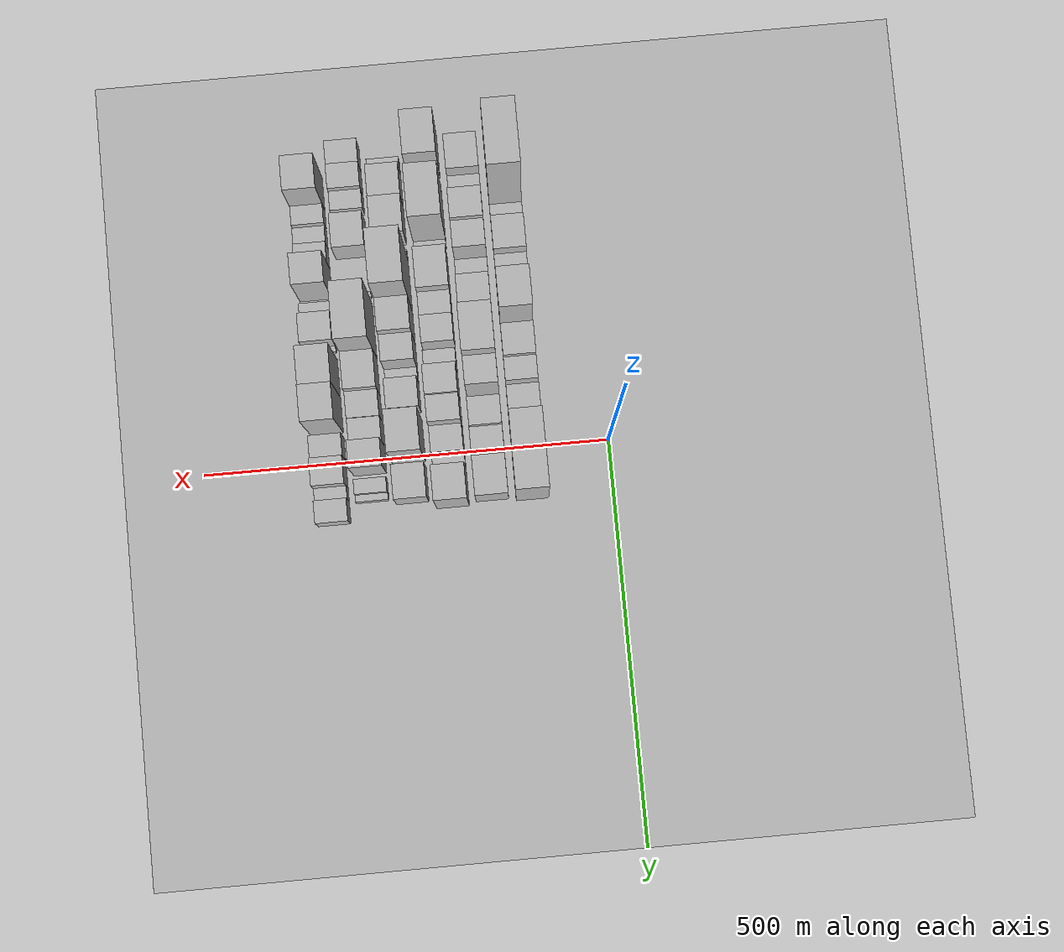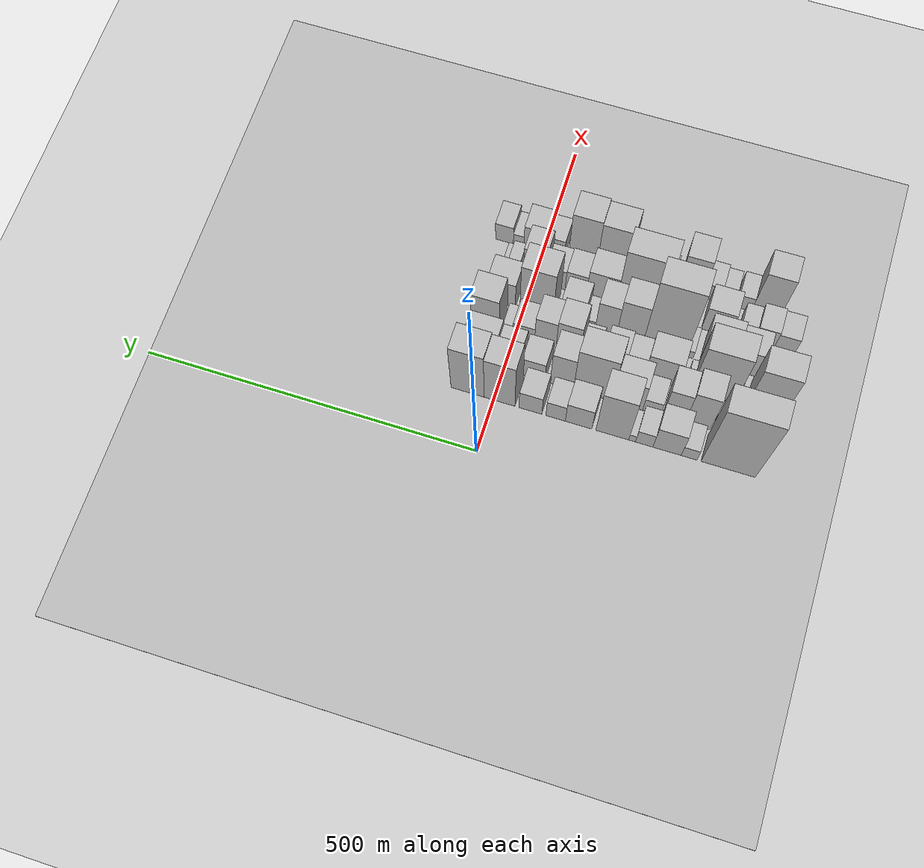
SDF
<sdf version="1.6">
 <world name="default">
  <include><name>ground_plane_1</name><uri>model://HANNAS_ground_plane</uri></include>
  <include>
   <name>ground_plane_2</name>
   <uri>model://HANNAS_ground_plane</uri>
   <pose>100 0 0  0 0 0</pose>
  </include>
  <model name="building_11">
   <static>1</static>
   <pose>100.0000 -345.0608 0 0.000000 0.000000 0.000000</pose>
   <link name="link">
    <pose>0 0 109.50 0 0 0</pose>
    <collision name="collision"><geometry><box><size>40.0000 78.4912 219.0000</size></box></geometry></collision>
    <visual name="visual">
     <cast_shadows>0</cast_shadows>
     <geometry><box><size>40.0000 78.4912 219.0000</size></box></geometry>
     <material>
      <script>
       <uri>model://HANNAS_wall/materials/scripts</uri>
       <uri>model://HANNAS_wall/materials/textures</uri>
       <name>vrc/HANNAS_wall</name>
      </script>
     </material>
    </visual>
   </link>
  </model>
  <model name="building_12">
   <static>1</static>
   <pose>100.0000 -288.3945 0 0.000000 0.000000 0.000000</pose>
   <link name="link">
    <pose>0 0 19.50 0 0 0</pose>
    <collision name="collision"><geometry><box><size>40.0000 22.8415 39.0000</size></box></geometry></collision>
    <visual name="visual">
     <cast_shadows>0</cast_shadows>
     <geometry><box><size>40.0000 22.8415 39.0000</size></box></geometry>
     <material>
      <script>
       <uri>model://HANNAS_wall/materials/scripts</uri>
       <uri>model://HANNAS_wall/materials/textures</uri>
       <name>vrc/HANNAS_wall</name>
      </script>
     </material>
    </visual>
   </link>
  </model>
  <model name="building_13">
   <static>1</static>
   <pose>100.0000 -256.2059 0 0.000000 0.000000 0.000000</pose>
   <link name="link">
    <pose>0 0 40.50 0 0 0</pose>
    <collision name="collision"><geometry><box><size>40.0000 41.5355 81.0000</size></box></geometry></collision>
    <visual name="visual">
     <cast_shadows>0</cast_shadows>
     <geometry><box><size>40.0000 41.5355 81.0000</size></box></geometry>
     <material>
      <script>
       <uri>model://HANNAS_wall/materials/scripts</uri>
       <uri>model://HANNAS_wall/materials/textures</uri>
       <name>vrc/HANNAS_wall</name>
      </script>
     </material>
    </visual>
   </link>
  </model>
  <model name="building_14">
   <static>1</static>
   <pose>100.0000 -222.7769 0 0.000000 0.000000 0.000000</pose>
   <link name="link">
    <pose>0 0 24.00 0 0 0</pose>
    <collision name="collision"><geometry><box><size>40.0000 25.3225 48.0000</size></box></geometry></collision>
    <visual name="visual">
     <cast_shadows>0</cast_shadows>
     <geometry><box><size>40.0000 25.3225 48.0000</size></box></geometry>
     <material>
      <script>
       <uri>model://HANNAS_wall/materials/scripts</uri>
       <uri>model://HANNAS_wall/materials/textures</uri>
       <name>vrc/HANNAS_wall</name>
      </script>
     </material>
    </visual>
   </link>
  </model>
  <model name="building_15">
   <static>1</static>
   <pose>100.0000 -205.1341 0 0.000000 0.000000 0.000000</pose>
   <link name="link">
    <pose>0 0 12.00 0 0 0</pose>
    <collision name="collision"><geometry><box><size>40.0000 9.9630 24.0000</size></box></geometry></collision>
    <visual name="visual">
     <cast_shadows>0</cast_shadows>
     <geometry><box><size>40.0000 9.9630 24.0000</size></box></geometry>
     <material>
      <script>
       <uri>model://HANNAS_wall/materials/scripts</uri>
       <uri>model://HANNAS_wall/materials/textures</uri>
       <name>vrc/HANNAS_wall</name>
      </script>
     </material>
    </visual>
   </link>
  </model>
  <model name="building_16">
   <static>1</static>
   <pose>100.0000 -175.8913 0 0.000000 0.000000 0.000000</pose>
   <link name="link">
    <pose>0 0 75.00 0 0 0</pose>
    <collision name="collision"><geometry><box><size>40.0000 48.5226 150.0000</size></box></geometry></collision>
    <visual name="visual">
     <cast_shadows>0</cast_shadows>
     <geometry><box><size>40.0000 48.5226 150.0000</size></box></geometry>
     <material>
      <script>
       <uri>model://HANNAS_wall/materials/scripts</uri>
       <uri>model://HANNAS_wall/materials/textures</uri>
       <name>vrc/HANNAS_wall</name>
      </script>
     </material>
    </visual>
   </link>
  </model>
  <model name="building_17">
   <static>1</static>
   <pose>100.0000 -125.9516 0 0.000000 0.000000 0.000000</pose>
   <link name="link">
    <pose>0 0 36.00 0 0 0</pose>
    <collision name="collision"><geometry><box><size>40.0000 39.3568 72.0000</size></box></geometry></collision>
    <visual name="visual">
     <cast_shadows>0</cast_shadows>
     <geometry><box><size>40.0000 39.3568 72.0000</size></box></geometry>
     <material>
      <script>
       <uri>model://HANNAS_wall/materials/scripts</uri>
       <uri>model://HANNAS_wall/materials/textures</uri>
       <name>vrc/HANNAS_wall</name>
      </script>
     </material>
    </visual>
   </link>
  </model>
  <model name="building_18">
   <static>1</static>
   <pose>100.0000 -91.8525 0 0.000000 0.000000 0.000000</pose>
   <link name="link">
    <pose>0 0 28.50 0 0 0</pose>
    <collision name="collision"><geometry><box><size>40.0000 28.8415 57.0000</size></box></geometry></collision>
    <visual name="visual">
     <cast_shadows>0</cast_shadows>
     <geometry><box><size>40.0000 28.8415 57.0000</size></box></geometry>
     <material>
      <script>
       <uri>model://HANNAS_wall/materials/scripts</uri>
       <uri>model://HANNAS_wall/materials/textures</uri>
       <name>vrc/HANNAS_wall</name>
      </script>
     </material>
    </visual>
   </link>
  </model>
  <model name="building_19">
   <static>1</static>
   <pose>100.0000 -54.3351 0 0.000000 0.000000 0.000000</pose>
   <link name="link">
    <pose>0 0 31.50 0 0 0</pose>
    <collision name="collision"><geometry><box><size>40.0000 34.1933 63.0000</size></box></geometry></collision>
    <visual name="visual">
     <cast_shadows>0</cast_shadows>
     <geometry><box><size>40.0000 34.1933 63.0000</size></box></geometry>
     <material>
      <script>
       <uri>model://HANNAS_wall/materials/scripts</uri>
       <uri>model://HANNAS_wall/materials/textures</uri>
       <name>vrc/HANNAS_wall</name>
      </script>
     </material>
    </visual>
   </link>
  </model>
  <model name="building_20">
   <static>1</static>
   <pose>100.0000 -8.2936 0 0.000000 0.000000 0.000000</pose>
   <link name="link">
    <pose>0 0 73.50 0 0 0</pose>
    <collision name="collision"><geometry><box><size>40.0000 45.8897 147.0000</size></box></geometry></collision>
    <visual name="visual">
     <cast_shadows>0</cast_shadows>
     <geometry><box><size>40.0000 45.8897 147.0000</size></box></geometry>
     <material>
      <script>
       <uri>model://HANNAS_wall/materials/scripts</uri>
       <uri>model://HANNAS_wall/materials/textures</uri>
       <name>vrc/HANNAS_wall</name>
      </script>
     </material>
    </visual>
   </link>
  </model>
  <model name="building_21">
   <static>1</static>
   <pose>100.0000 39.7256 0 0.000000 0.000000 0.000000</pose>
   <link name="link">
    <pose>0 0 76.50 0 0 0</pose>
    <collision name="collision"><geometry><box><size>40.0000 50.1487 153.0000</size></box></geometry></collision>
    <visual name="visual">
     <cast_shadows>0</cast_shadows>
     <geometry><box><size>40.0000 50.1487 153.0000</size></box></geometry>
     <material>
      <script>
       <uri>model://HANNAS_wall/materials/scripts</uri>
       <uri>model://HANNAS_wall/materials/textures</uri>
       <name>vrc/HANNAS_wall</name>
      </script>
     </material>
    </visual>
   </link>
  </model>
  <model name="building_55">
   <static>1</static>
   <pose>149.0000 -362.6099 0 0.000000 0.000000 0.000000</pose>
   <link name="link">
    <pose>0 0 37.50 0 0 0</pose>
    <collision name="collision"><geometry><box><size>40.0000 43.4185 75.0000</size></box></geometry></collision>
    <visual name="visual">
     <cast_shadows>0</cast_shadows>
     <geometry><box><size>40.0000 43.4185 75.0000</size></box></geometry>
     <material>
      <script>
       <uri>model://HANNAS_wall/materials/scripts</uri>
       <uri>model://HANNAS_wall/materials/textures</uri>
       <name>vrc/HANNAS_wall</name>
      </script>
     </material>
    </visual>
   </link>
  </model>
  <model name="building_56">
   <static>1</static>
   <pose>149.0000 -330.1125 0 0.000000 0.000000 0.000000</pose>
   <link name="link">
    <pose>0 0 18.00 0 0 0</pose>
    <collision name="collision"><geometry><box><size>40.0000 21.5761 36.0000</size></box></geometry></collision>
    <visual name="visual">
     <cast_shadows>0</cast_shadows>
     <geometry><box><size>40.0000 21.5761 36.0000</size></box></geometry>
     <material>
      <script>
       <uri>model://HANNAS_wall/materials/scripts</uri>
       <uri>model://HANNAS_wall/materials/textures</uri>
       <name>vrc/HANNAS_wall</name>
      </script>
     </material>
    </visual>
   </link>
  </model>
  <model name="building_57">
   <static>1</static>
   <pose>149.0000 -314.8560 0 0.000000 0.000000 0.000000</pose>
   <link name="link">
    <pose>0 0 10.50 0 0 0</pose>
    <collision name="collision"><geometry><box><size>40.0000 8.9369 21.0000</size></box></geometry></collision>
    <visual name="visual">
     <cast_shadows>0</cast_shadows>
     <geometry><box><size>40.0000 8.9369 21.0000</size></box></geometry>
     <material>
      <script>
       <uri>model://HANNAS_wall/materials/scripts</uri>
       <uri>model://HANNAS_wall/materials/textures</uri>
       <name>vrc/HANNAS_wall</name>
      </script>
     </material>
    </visual>
   </link>
  </model>
  <model name="building_58">
   <static>1</static>
   <pose>149.0000 -287.9993 0 0.000000 0.000000 0.000000</pose>
   <link name="link">
    <pose>0 0 60.00 0 0 0</pose>
    <collision name="collision"><geometry><box><size>40.0000 36.7766 120.0000</size></box></geometry></collision>
    <visual name="visual">
     <cast_shadows>0</cast_shadows>
     <geometry><box><size>40.0000 36.7766 120.0000</size></box></geometry>
     <material>
      <script>
       <uri>model://HANNAS_wall/materials/scripts</uri>
       <uri>model://HANNAS_wall/materials/textures</uri>
       <name>vrc/HANNAS_wall</name>
      </script>
     </material>
    </visual>
   </link>
  </model>
  <model name="building_59">
   <static>1</static>
   <pose>149.0000 -253.2207 0 0.000000 0.000000 0.000000</pose>
   <link name="link">
    <pose>0 0 52.50 0 0 0</pose>
    <collision name="collision"><geometry><box><size>40.0000 32.7805 105.0000</size></box></geometry></collision>
    <visual name="visual">
     <cast_shadows>0</cast_shadows>
     <geometry><box><size>40.0000 32.7805 105.0000</size></box></geometry>
     <material>
      <script>
       <uri>model://HANNAS_wall/materials/scripts</uri>
       <uri>model://HANNAS_wall/materials/textures</uri>
       <name>vrc/HANNAS_wall</name>
      </script>
     </material>
    </visual>
   </link>
  </model>
  <model name="building_60">
   <static>1</static>
   <pose>149.0000 -220.4402 0 0.000000 0.000000 0.000000</pose>
   <link name="link">
    <pose>0 0 22.50 0 0 0</pose>
    <collision name="collision"><geometry><box><size>40.0000 26.7804 45.0000</size></box></geometry></collision>
    <visual name="visual">
     <cast_shadows>0</cast_shadows>
     <geometry><box><size>40.0000 26.7804 45.0000</size></box></geometry>
     <material>
      <script>
       <uri>model://HANNAS_wall/materials/scripts</uri>
       <uri>model://HANNAS_wall/materials/textures</uri>
       <name>vrc/HANNAS_wall</name>
      </script>
     </material>
    </visual>
   </link>
  </model>
  <model name="building_61">
   <static>1</static>
   <pose>149.0000 -184.4240 0 0.000000 0.000000 0.000000</pose>
   <link name="link">
    <pose>0 0 45.00 0 0 0</pose>
    <collision name="collision"><geometry><box><size>40.0000 45.2520 90.0000</size></box></geometry></collision>
    <visual name="visual">
     <cast_shadows>0</cast_shadows>
     <geometry><box><size>40.0000 45.2520 90.0000</size></box></geometry>
     <material>
      <script>
       <uri>model://HANNAS_wall/materials/scripts</uri>
       <uri>model://HANNAS_wall/materials/textures</uri>
       <name>vrc/HANNAS_wall</name>
      </script>
     </material>
    </visual>
   </link>
  </model>
  <model name="building_62">
   <static>1</static>
   <pose>149.0000 -132.9231 0 0.000000 0.000000 0.000000</pose>
   <link name="link">
    <pose>0 0 75.00 0 0 0</pose>
    <collision name="collision"><geometry><box><size>40.0000 57.7499 150.0000</size></box></geometry></collision>
    <visual name="visual">
     <cast_shadows>0</cast_shadows>
     <geometry><box><size>40.0000 57.7499 150.0000</size></box></geometry>
     <material>
      <script>
       <uri>model://HANNAS_wall/materials/scripts</uri>
       <uri>model://HANNAS_wall/materials/textures</uri>
       <name>vrc/HANNAS_wall</name>
      </script>
     </material>
    </visual>
   </link>
  </model>
  <model name="building_63">
   <static>1</static>
   <pose>149.0000 -86.6286 0 0.000000 0.000000 0.000000</pose>
   <link name="link">
    <pose>0 0 55.50 0 0 0</pose>
    <collision name="collision"><geometry><box><size>40.0000 34.8391 111.0000</size></box></geometry></collision>
    <visual name="visual">
     <cast_shadows>0</cast_shadows>
     <geometry><box><size>40.0000 34.8391 111.0000</size></box></geometry>
     <material>
      <script>
       <uri>model://HANNAS_wall/materials/scripts</uri>
       <uri>model://HANNAS_wall/materials/textures</uri>
       <name>vrc/HANNAS_wall</name>
      </script>
     </material>
    </visual>
   </link>
  </model>
  <model name="building_64">
   <static>1</static>
   <pose>149.0000 -43.5966 0 0.000000 0.000000 0.000000</pose>
   <link name="link">
    <pose>0 0 31.50 0 0 0</pose>
    <collision name="collision"><geometry><box><size>40.0000 35.2250 63.0000</size></box></geometry></collision>
    <visual name="visual">
     <cast_shadows>0</cast_shadows>
     <geometry><box><size>40.0000 35.2250 63.0000</size></box></geometry>
     <material>
      <script>
       <uri>model://HANNAS_wall/materials/scripts</uri>
       <uri>model://HANNAS_wall/materials/textures</uri>
       <name>vrc/HANNAS_wall</name>
      </script>
     </material>
    </visual>
   </link>
  </model>
  <model name="building_65">
   <static>1</static>
   <pose>149.0000 -4.9750 0 0.000000 0.000000 0.000000</pose>
   <link name="link">
    <pose>0 0 36.00 0 0 0</pose>
    <collision name="collision"><geometry><box><size>40.0000 36.0183 72.0000</size></box></geometry></collision>
    <visual name="visual">
     <cast_shadows>0</cast_shadows>
     <geometry><box><size>40.0000 36.0183 72.0000</size></box></geometry>
     <material>
      <script>
       <uri>model://HANNAS_wall/materials/scripts</uri>
       <uri>model://HANNAS_wall/materials/textures</uri>
       <name>vrc/HANNAS_wall</name>
      </script>
     </material>
    </visual>
   </link>
  </model>
  <model name="building_66">
   <static>1</static>
   <pose>149.0000 37.3282 0 0.000000 0.000000 0.000000</pose>
   <link name="link">
    <pose>0 0 43.50 0 0 0</pose>
    <collision name="collision"><geometry><box><size>40.0000 48.5881 87.0000</size></box></geometry></collision>
    <visual name="visual">
     <cast_shadows>0</cast_shadows>
     <geometry><box><size>40.0000 48.5881 87.0000</size></box></geometry>
     <material>
      <script>
       <uri>model://HANNAS_wall/materials/scripts</uri>
       <uri>model://HANNAS_wall/materials/textures</uri>
       <name>vrc/HANNAS_wall</name>
      </script>
     </material>
    </visual>
   </link>
  </model>
  <model name="building_103">
   <static>1</static>
   <pose>198.0000 -373.2777 0 0.000000 0.000000 0.000000</pose>
   <link name="link">
    <pose>0 0 72.00 0 0 0</pose>
    <collision name="collision"><geometry><box><size>40.0000 54.0925 144.0000</size></box></geometry></collision>
    <visual name="visual">
     <cast_shadows>0</cast_shadows>
     <geometry><box><size>40.0000 54.0925 144.0000</size></box></geometry>
     <material>
      <script>
       <uri>model://HANNAS_wall/materials/scripts</uri>
       <uri>model://HANNAS_wall/materials/textures</uri>
       <name>vrc/HANNAS_wall</name>
      </script>
     </material>
    </visual>
   </link>
  </model>
  <model name="building_104">
   <static>1</static>
   <pose>198.0000 -332.9294 0 0.000000 0.000000 0.000000</pose>
   <link name="link">
    <pose>0 0 7.50 0 0 0</pose>
    <collision name="collision"><geometry><box><size>40.0000 6.6041 15.0000</size></box></geometry></collision>
    <visual name="visual">
     <cast_shadows>0</cast_shadows>
     <geometry><box><size>40.0000 6.6041 15.0000</size></box></geometry>
     <material>
      <script>
       <uri>model://HANNAS_wall/materials/scripts</uri>
       <uri>model://HANNAS_wall/materials/textures</uri>
       <name>vrc/HANNAS_wall</name>
      </script>
     </material>
    </visual>
   </link>
  </model>
  <model name="building_105">
   <static>1</static>
   <pose>198.0000 -297.6052 0 0.000000 0.000000 0.000000</pose>
   <link name="link">
    <pose>0 0 82.50 0 0 0</pose>
    <collision name="collision"><geometry><box><size>40.0000 64.0444 165.0000</size></box></geometry></collision>
    <visual name="visual">
     <cast_shadows>0</cast_shadows>
     <geometry><box><size>40.0000 64.0444 165.0000</size></box></geometry>
     <material>
      <script>
       <uri>model://HANNAS_wall/materials/scripts</uri>
       <uri>model://HANNAS_wall/materials/textures</uri>
       <name>vrc/HANNAS_wall</name>
      </script>
     </material>
    </visual>
   </link>
  </model>
  <model name="building_106">
   <static>1</static>
   <pose>198.0000 -261.0612 0 0.000000 0.000000 0.000000</pose>
   <link name="link">
    <pose>0 0 10.50 0 0 0</pose>
    <collision name="collision"><geometry><box><size>40.0000 9.0436 21.0000</size></box></geometry></collision>
    <visual name="visual">
     <cast_shadows>0</cast_shadows>
     <geometry><box><size>40.0000 9.0436 21.0000</size></box></geometry>
     <material>
      <script>
       <uri>model://HANNAS_wall/materials/scripts</uri>
       <uri>model://HANNAS_wall/materials/textures</uri>
       <name>vrc/HANNAS_wall</name>
      </script>
     </material>
    </visual>
   </link>
  </model>
  <model name="building_107">
   <static>1</static>
   <pose>198.0000 -221.3754 0 0.000000 0.000000 0.000000</pose>
   <link name="link">
    <pose>0 0 42.00 0 0 0</pose>
    <collision name="collision"><geometry><box><size>40.0000 50.3282 84.0000</size></box></geometry></collision>
    <visual name="visual">
     <cast_shadows>0</cast_shadows>
     <geometry><box><size>40.0000 50.3282 84.0000</size></box></geometry>
     <material>
      <script>
       <uri>model://HANNAS_wall/materials/scripts</uri>
       <uri>model://HANNAS_wall/materials/textures</uri>
       <name>vrc/HANNAS_wall</name>
      </script>
     </material>
    </visual>
   </link>
  </model>
  <model name="building_108">
   <static>1</static>
   <pose>198.0000 -181.4542 0 0.000000 0.000000 0.000000</pose>
   <link name="link">
    <pose>0 0 27.00 0 0 0</pose>
    <collision name="collision"><geometry><box><size>40.0000 29.5141 54.0000</size></box></geometry></collision>
    <visual name="visual">
     <cast_shadows>0</cast_shadows>
     <geometry><box><size>40.0000 29.5141 54.0000</size></box></geometry>
     <material>
      <script>
       <uri>model://HANNAS_wall/materials/scripts</uri>
       <uri>model://HANNAS_wall/materials/textures</uri>
       <name>vrc/HANNAS_wall</name>
      </script>
     </material>
    </visual>
   </link>
  </model>
  <model name="building_109">
   <static>1</static>
   <pose>198.0000 -149.6886 0 0.000000 0.000000 0.000000</pose>
   <link name="link">
    <pose>0 0 30.00 0 0 0</pose>
    <collision name="collision"><geometry><box><size>40.0000 34.0172 60.0000</size></box></geometry></collision>
    <visual name="visual">
     <cast_shadows>0</cast_shadows>
     <geometry><box><size>40.0000 34.0172 60.0000</size></box></geometry>
     <material>
      <script>
       <uri>model://HANNAS_wall/materials/scripts</uri>
       <uri>model://HANNAS_wall/materials/textures</uri>
       <name>vrc/HANNAS_wall</name>
      </script>
     </material>
    </visual>
   </link>
  </model>
  <model name="building_110">
   <static>1</static>
   <pose>198.0000 -112.2711 0 0.000000 0.000000 0.000000</pose>
   <link name="link">
    <pose>0 0 22.50 0 0 0</pose>
    <collision name="collision"><geometry><box><size>40.0000 26.8179 45.0000</size></box></geometry></collision>
    <visual name="visual">
     <cast_shadows>0</cast_shadows>
     <geometry><box><size>40.0000 26.8179 45.0000</size></box></geometry>
     <material>
      <script>
       <uri>model://HANNAS_wall/materials/scripts</uri>
       <uri>model://HANNAS_wall/materials/textures</uri>
       <name>vrc/HANNAS_wall</name>
      </script>
     </material>
    </visual>
   </link>
  </model>
  <model name="building_111">
   <static>1</static>
   <pose>198.0000 -80.8093 0 0.000000 0.000000 0.000000</pose>
   <link name="link">
    <pose>0 0 54.00 0 0 0</pose>
    <collision name="collision"><geometry><box><size>40.0000 36.1056 108.0000</size></box></geometry></collision>
    <visual name="visual">
     <cast_shadows>0</cast_shadows>
     <geometry><box><size>40.0000 36.1056 108.0000</size></box></geometry>
     <material>
      <script>
       <uri>model://HANNAS_wall/materials/scripts</uri>
       <uri>model://HANNAS_wall/materials/textures</uri>
       <name>vrc/HANNAS_wall</name>
      </script>
     </material>
    </visual>
   </link>
  </model>
  <model name="building_112">
   <static>1</static>
   <pose>198.0000 -46.6215 0 0.000000 0.000000 0.000000</pose>
   <link name="link">
    <pose>0 0 49.50 0 0 0</pose>
    <collision name="collision"><geometry><box><size>40.0000 32.2702 99.0000</size></box></geometry></collision>
    <visual name="visual">
     <cast_shadows>0</cast_shadows>
     <geometry><box><size>40.0000 32.2702 99.0000</size></box></geometry>
     <material>
      <script>
       <uri>model://HANNAS_wall/materials/scripts</uri>
       <uri>model://HANNAS_wall/materials/textures</uri>
       <name>vrc/HANNAS_wall</name>
      </script>
     </material>
    </visual>
   </link>
  </model>
  <model name="building_113">
   <static>1</static>
   <pose>198.0000 -14.0744 0 0.000000 0.000000 0.000000</pose>
   <link name="link">
    <pose>0 0 30.00 0 0 0</pose>
    <collision name="collision"><geometry><box><size>40.0000 32.8240 60.0000</size></box></geometry></collision>
    <visual name="visual">
     <cast_shadows>0</cast_shadows>
     <geometry><box><size>40.0000 32.8240 60.0000</size></box></geometry>
     <material>
      <script>
       <uri>model://HANNAS_wall/materials/scripts</uri>
       <uri>model://HANNAS_wall/materials/textures</uri>
       <name>vrc/HANNAS_wall</name>
      </script>
     </material>
    </visual>
   </link>
  </model>
  <model name="building_114">
   <static>1</static>
   <pose>198.0000 10.6131 0 0.000000 0.000000 0.000000</pose>
   <link name="link">
    <pose>0 0 16.50 0 0 0</pose>
    <collision name="collision"><geometry><box><size>40.0000 16.5510 33.0000</size></box></geometry></collision>
    <visual name="visual">
     <cast_shadows>0</cast_shadows>
     <geometry><box><size>40.0000 16.5510 33.0000</size></box></geometry>
     <material>
      <script>
       <uri>model://HANNAS_wall/materials/scripts</uri>
       <uri>model://HANNAS_wall/materials/textures</uri>
       <name>vrc/HANNAS_wall</name>
      </script>
     </material>
    </visual>
   </link>
  </model>
  <model name="building_115">
   <static>1</static>
   <pose>198.0000 44.2840 0 0.000000 0.000000 0.000000</pose>
   <link name="link">
    <pose>0 0 58.50 0 0 0</pose>
    <collision name="collision"><geometry><box><size>40.0000 42.7909 117.0000</size></box></geometry></collision>
    <visual name="visual">
     <cast_shadows>0</cast_shadows>
     <geometry><box><size>40.0000 42.7909 117.0000</size></box></geometry>
     <material>
      <script>
       <uri>model://HANNAS_wall/materials/scripts</uri>
       <uri>model://HANNAS_wall/materials/textures</uri>
       <name>vrc/HANNAS_wall</name>
      </script>
     </material>
    </visual>
   </link>
  </model>
  <model name="building_155">
   <static>1</static>
   <pose>247.0000 -363.1365 0 0.000000 0.000000 0.000000</pose>
   <link name="link">
    <pose>0 0 16.50 0 0 0</pose>
    <collision name="collision"><geometry><box><size>40.0000 17.5663 33.0000</size></box></geometry></collision>
    <visual name="visual">
     <cast_shadows>0</cast_shadows>
     <geometry><box><size>40.0000 17.5663 33.0000</size></box></geometry>
     <material>
      <script>
       <uri>model://HANNAS_wall/materials/scripts</uri>
       <uri>model://HANNAS_wall/materials/textures</uri>
       <name>vrc/HANNAS_wall</name>
      </script>
     </material>
    </visual>
   </link>
  </model>
  <model name="building_156">
   <static>1</static>
   <pose>247.0000 -333.6813 0 0.000000 0.000000 0.000000</pose>
   <link name="link">
    <pose>0 0 39.00 0 0 0</pose>
    <collision name="collision"><geometry><box><size>40.0000 41.3442 78.0000</size></box></geometry></collision>
    <visual name="visual">
     <cast_shadows>0</cast_shadows>
     <geometry><box><size>40.0000 41.3442 78.0000</size></box></geometry>
     <material>
      <script>
       <uri>model://HANNAS_wall/materials/scripts</uri>
       <uri>model://HANNAS_wall/materials/textures</uri>
       <name>vrc/HANNAS_wall</name>
      </script>
     </material>
    </visual>
   </link>
  </model>
  <model name="building_157">
   <static>1</static>
   <pose>247.0000 -289.6687 0 0.000000 0.000000 0.000000</pose>
   <link name="link">
    <pose>0 0 43.50 0 0 0</pose>
    <collision name="collision"><geometry><box><size>40.0000 46.6809 87.0000</size></box></geometry></collision>
    <visual name="visual">
     <cast_shadows>0</cast_shadows>
     <geometry><box><size>40.0000 46.6809 87.0000</size></box></geometry>
     <material>
      <script>
       <uri>model://HANNAS_wall/materials/scripts</uri>
       <uri>model://HANNAS_wall/materials/textures</uri>
       <name>vrc/HANNAS_wall</name>
      </script>
     </material>
    </visual>
   </link>
  </model>
  <model name="building_158">
   <static>1</static>
   <pose>247.0000 -251.0547 0 0.000000 0.000000 0.000000</pose>
   <link name="link">
    <pose>0 0 12.00 0 0 0</pose>
    <collision name="collision"><geometry><box><size>40.0000 10.5470 24.0000</size></box></geometry></collision>
    <visual name="visual">
     <cast_shadows>0</cast_shadows>
     <geometry><box><size>40.0000 10.5470 24.0000</size></box></geometry>
     <material>
      <script>
       <uri>model://HANNAS_wall/materials/scripts</uri>
       <uri>model://HANNAS_wall/materials/textures</uri>
       <name>vrc/HANNAS_wall</name>
      </script>
     </material>
    </visual>
   </link>
  </model>
  <model name="building_159">
   <static>1</static>
   <pose>247.0000 -213.2609 0 0.000000 0.000000 0.000000</pose>
   <link name="link">
    <pose>0 0 108.00 0 0 0</pose>
    <collision name="collision"><geometry><box><size>40.0000 65.0406 216.0000</size></box></geometry></collision>
    <visual name="visual">
     <cast_shadows>0</cast_shadows>
     <geometry><box><size>40.0000 65.0406 216.0000</size></box></geometry>
     <material>
      <script>
       <uri>model://HANNAS_wall/materials/scripts</uri>
       <uri>model://HANNAS_wall/materials/textures</uri>
       <name>vrc/HANNAS_wall</name>
      </script>
     </material>
    </visual>
   </link>
  </model>
  <model name="building_160">
   <static>1</static>
   <pose>247.0000 -160.6791 0 0.000000 0.000000 0.000000</pose>
   <link name="link">
    <pose>0 0 63.00 0 0 0</pose>
    <collision name="collision"><geometry><box><size>40.0000 40.1230 126.0000</size></box></geometry></collision>
    <visual name="visual">
     <cast_shadows>0</cast_shadows>
     <geometry><box><size>40.0000 40.1230 126.0000</size></box></geometry>
     <material>
      <script>
       <uri>model://HANNAS_wall/materials/scripts</uri>
       <uri>model://HANNAS_wall/materials/textures</uri>
       <name>vrc/HANNAS_wall</name>
      </script>
     </material>
    </visual>
   </link>
  </model>
  <model name="building_161">
   <static>1</static>
   <pose>247.0000 -124.4422 0 0.000000 0.000000 0.000000</pose>
   <link name="link">
    <pose>0 0 49.50 0 0 0</pose>
    <collision name="collision"><geometry><box><size>40.0000 32.3509 99.0000</size></box></geometry></collision>
    <visual name="visual">
     <cast_shadows>0</cast_shadows>
     <geometry><box><size>40.0000 32.3509 99.0000</size></box></geometry>
     <material>
      <script>
       <uri>model://HANNAS_wall/materials/scripts</uri>
       <uri>model://HANNAS_wall/materials/textures</uri>
       <name>vrc/HANNAS_wall</name>
      </script>
     </material>
    </visual>
   </link>
  </model>
  <model name="building_162">
   <static>1</static>
   <pose>247.0000 -99.7911 0 0.000000 0.000000 0.000000</pose>
   <link name="link">
    <pose>0 0 15.00 0 0 0</pose>
    <collision name="collision"><geometry><box><size>40.0000 16.9514 30.0000</size></box></geometry></collision>
    <visual name="visual">
     <cast_shadows>0</cast_shadows>
     <geometry><box><size>40.0000 16.9514 30.0000</size></box></geometry>
     <material>
      <script>
       <uri>model://HANNAS_wall/materials/scripts</uri>
       <uri>model://HANNAS_wall/materials/textures</uri>
       <name>vrc/HANNAS_wall</name>
      </script>
     </material>
    </visual>
   </link>
  </model>
  <model name="building_163">
   <static>1</static>
   <pose>247.0000 -72.8344 0 0.000000 0.000000 0.000000</pose>
   <link name="link">
    <pose>0 0 36.00 0 0 0</pose>
    <collision name="collision"><geometry><box><size>40.0000 36.9620 72.0000</size></box></geometry></collision>
    <visual name="visual">
     <cast_shadows>0</cast_shadows>
     <geometry><box><size>40.0000 36.9620 72.0000</size></box></geometry>
     <material>
      <script>
       <uri>model://HANNAS_wall/materials/scripts</uri>
       <uri>model://HANNAS_wall/materials/textures</uri>
       <name>vrc/HANNAS_wall</name>
      </script>
     </material>
    </visual>
   </link>
  </model>
  <model name="building_164">
   <static>1</static>
   <pose>247.0000 -18.9216 0 0.000000 0.000000 0.000000</pose>
   <link name="link">
    <pose>0 0 72.00 0 0 0</pose>
    <collision name="collision"><geometry><box><size>40.0000 50.8635 144.0000</size></box></geometry></collision>
    <visual name="visual">
     <cast_shadows>0</cast_shadows>
     <geometry><box><size>40.0000 50.8635 144.0000</size></box></geometry>
     <material>
      <script>
       <uri>model://HANNAS_wall/materials/scripts</uri>
       <uri>model://HANNAS_wall/materials/textures</uri>
       <name>vrc/HANNAS_wall</name>
      </script>
     </material>
    </visual>
   </link>
  </model>
  <model name="building_165">
   <static>1</static>
   <pose>247.0000 34.8295 0 0.000000 0.000000 0.000000</pose>
   <link name="link">
    <pose>0 0 37.50 0 0 0</pose>
    <collision name="collision"><geometry><box><size>40.0000 42.6388 75.0000</size></box></geometry></collision>
    <visual name="visual">
     <cast_shadows>0</cast_shadows>
     <geometry><box><size>40.0000 42.6388 75.0000</size></box></geometry>
     <material>
      <script>
       <uri>model://HANNAS_wall/materials/scripts</uri>
       <uri>model://HANNAS_wall/materials/textures</uri>
       <name>vrc/HANNAS_wall</name>
      </script>
     </material>
    </visual>
   </link>
  </model>
  <model name="building_202">
   <static>1</static>
   <pose>296.0000 -379.1021 0 0.000000 0.000000 0.000000</pose>
   <link name="link">
    <pose>0 0 27.00 0 0 0</pose>
    <collision name="collision"><geometry><box><size>40.0000 30.4537 54.0000</size></box></geometry></collision>
    <visual name="visual">
     <cast_shadows>0</cast_shadows>
     <geometry><box><size>40.0000 30.4537 54.0000</size></box></geometry>
     <material>
      <script>
       <uri>model://HANNAS_wall/materials/scripts</uri>
       <uri>model://HANNAS_wall/materials/textures</uri>
       <name>vrc/HANNAS_wall</name>
      </script>
     </material>
    </visual>
   </link>
  </model>
  <model name="building_203">
   <static>1</static>
   <pose>296.0000 -348.4273 0 0.000000 0.000000 0.000000</pose>
   <link name="link">
    <pose>0 0 30.00 0 0 0</pose>
    <collision name="collision"><geometry><box><size>40.0000 30.8959 60.0000</size></box></geometry></collision>
    <visual name="visual">
     <cast_shadows>0</cast_shadows>
     <geometry><box><size>40.0000 30.8959 60.0000</size></box></geometry>
     <material>
      <script>
       <uri>model://HANNAS_wall/materials/scripts</uri>
       <uri>model://HANNAS_wall/materials/textures</uri>
       <name>vrc/HANNAS_wall</name>
      </script>
     </material>
    </visual>
   </link>
  </model>
  <model name="building_204">
   <static>1</static>
   <pose>296.0000 -320.9414 0 0.000000 0.000000 0.000000</pose>
   <link name="link">
    <pose>0 0 22.50 0 0 0</pose>
    <collision name="collision"><geometry><box><size>40.0000 24.0760 45.0000</size></box></geometry></collision>
    <visual name="visual">
     <cast_shadows>0</cast_shadows>
     <geometry><box><size>40.0000 24.0760 45.0000</size></box></geometry>
     <material>
      <script>
       <uri>model://HANNAS_wall/materials/scripts</uri>
       <uri>model://HANNAS_wall/materials/textures</uri>
       <name>vrc/HANNAS_wall</name>
      </script>
     </material>
    </visual>
   </link>
  </model>
  <model name="building_205">
   <static>1</static>
   <pose>296.0000 -277.5805 0 0.000000 0.000000 0.000000</pose>
   <link name="link">
    <pose>0 0 37.50 0 0 0</pose>
    <collision name="collision"><geometry><box><size>40.0000 42.6459 75.0000</size></box></geometry></collision>
    <visual name="visual">
     <cast_shadows>0</cast_shadows>
     <geometry><box><size>40.0000 42.6459 75.0000</size></box></geometry>
     <material>
      <script>
       <uri>model://HANNAS_wall/materials/scripts</uri>
       <uri>model://HANNAS_wall/materials/textures</uri>
       <name>vrc/HANNAS_wall</name>
      </script>
     </material>
    </visual>
   </link>
  </model>
  <model name="building_206">
   <static>1</static>
   <pose>296.0000 -205.9853 0 0.000000 0.000000 0.000000</pose>
   <link name="link">
    <pose>0 0 7.50 0 0 0</pose>
    <collision name="collision"><geometry><box><size>40.0000 6.8482 15.0000</size></box></geometry></collision>
    <visual name="visual">
     <cast_shadows>0</cast_shadows>
     <geometry><box><size>40.0000 6.8482 15.0000</size></box></geometry>
     <material>
      <script>
       <uri>model://HANNAS_wall/materials/scripts</uri>
       <uri>model://HANNAS_wall/materials/textures</uri>
       <name>vrc/HANNAS_wall</name>
      </script>
     </material>
    </visual>
   </link>
  </model>
  <model name="building_207">
   <static>1</static>
   <pose>296.0000 -161.2984 0 0.000000 0.000000 0.000000</pose>
   <link name="link">
    <pose>0 0 88.50 0 0 0</pose>
    <collision name="collision"><geometry><box><size>40.0000 68.5256 177.0000</size></box></geometry></collision>
    <visual name="visual">
     <cast_shadows>0</cast_shadows>
     <geometry><box><size>40.0000 68.5256 177.0000</size></box></geometry>
     <material>
      <script>
       <uri>model://HANNAS_wall/materials/scripts</uri>
       <uri>model://HANNAS_wall/materials/textures</uri>
       <name>vrc/HANNAS_wall</name>
      </script>
     </material>
    </visual>
   </link>
  </model>
  <model name="building_208">
   <static>1</static>
   <pose>296.0000 -104.0376 0 0.000000 0.000000 0.000000</pose>
   <link name="link">
    <pose>0 0 42.00 0 0 0</pose>
    <collision name="collision"><geometry><box><size>40.0000 45.9959 84.0000</size></box></geometry></collision>
    <visual name="visual">
     <cast_shadows>0</cast_shadows>
     <geometry><box><size>40.0000 45.9959 84.0000</size></box></geometry>
     <material>
      <script>
       <uri>model://HANNAS_wall/materials/scripts</uri>
       <uri>model://HANNAS_wall/materials/textures</uri>
       <name>vrc/HANNAS_wall</name>
      </script>
     </material>
    </visual>
   </link>
  </model>
  <model name="building_209">
   <static>1</static>
   <pose>296.0000 -64.6529 0 0.000000 0.000000 0.000000</pose>
   <link name="link">
    <pose>0 0 31.50 0 0 0</pose>
    <collision name="collision"><geometry><box><size>40.0000 32.7735 63.0000</size></box></geometry></collision>
    <visual name="visual">
     <cast_shadows>0</cast_shadows>
     <geometry><box><size>40.0000 32.7735 63.0000</size></box></geometry>
     <material>
      <script>
       <uri>model://HANNAS_wall/materials/scripts</uri>
       <uri>model://HANNAS_wall/materials/textures</uri>
       <name>vrc/HANNAS_wall</name>
      </script>
     </material>
    </visual>
   </link>
  </model>
  <model name="building_210">
   <static>1</static>
   <pose>296.0000 -32.8373 0 0.000000 0.000000 0.000000</pose>
   <link name="link">
    <pose>0 0 30.00 0 0 0</pose>
    <collision name="collision"><geometry><box><size>40.0000 30.8579 60.0000</size></box></geometry></collision>
    <visual name="visual">
     <cast_shadows>0</cast_shadows>
     <geometry><box><size>40.0000 30.8579 60.0000</size></box></geometry>
     <material>
      <script>
       <uri>model://HANNAS_wall/materials/scripts</uri>
       <uri>model://HANNAS_wall/materials/textures</uri>
       <name>vrc/HANNAS_wall</name>
      </script>
     </material>
    </visual>
   </link>
  </model>
  <model name="building_211">
   <static>1</static>
   <pose>296.0000 -0.5191 0 0.000000 0.000000 0.000000</pose>
   <link name="link">
    <pose>0 0 49.50 0 0 0</pose>
    <collision name="collision"><geometry><box><size>40.0000 33.7784 99.0000</size></box></geometry></collision>
    <visual name="visual">
     <cast_shadows>0</cast_shadows>
     <geometry><box><size>40.0000 33.7784 99.0000</size></box></geometry>
     <material>
      <script>
       <uri>model://HANNAS_wall/materials/scripts</uri>
       <uri>model://HANNAS_wall/materials/textures</uri>
       <name>vrc/HANNAS_wall</name>
      </script>
     </material>
    </visual>
   </link>
  </model>
  <model name="building_212">
   <static>1</static>
   <pose>296.0000 32.6022 0 0.000000 0.000000 0.000000</pose>
   <link name="link">
    <pose>0 0 16.50 0 0 0</pose>
    <collision name="collision"><geometry><box><size>40.0000 18.4643 33.0000</size></box></geometry></collision>
    <visual name="visual">
     <cast_shadows>0</cast_shadows>
     <geometry><box><size>40.0000 18.4643 33.0000</size></box></geometry>
     <material>
      <script>
       <uri>model://HANNAS_wall/materials/scripts</uri>
       <uri>model://HANNAS_wall/materials/textures</uri>
       <name>vrc/HANNAS_wall</name>
      </script>
     </material>
    </visual>
   </link>
  </model>
  <model name="building_213">
   <static>1</static>
   <pose>296.0000 46.1544 0 0.000000 0.000000 0.000000</pose>
   <link name="link">
    <pose>0 0 10.50 0 0 0</pose>
    <collision name="collision"><geometry><box><size>40.0000 8.6401 21.0000</size></box></geometry></collision>
    <visual name="visual">
     <cast_shadows>0</cast_shadows>
     <geometry><box><size>40.0000 8.6401 21.0000</size></box></geometry>
     <material>
      <script>
       <uri>model://HANNAS_wall/materials/scripts</uri>
       <uri>model://HANNAS_wall/materials/textures</uri>
       <name>vrc/HANNAS_wall</name>
      </script>
     </material>
    </visual>
   </link>
  </model>
  <model name="building_249">
   <static>1</static>
   <pose>345.0000 -340.3831 0 0.000000 0.000000 0.000000</pose>
   <link name="link">
    <pose>0 0 64.50 0 0 0</pose>
    <collision name="collision"><geometry><box><size>40.0000 42.0001 129.0000</size></box></geometry></collision>
    <visual name="visual">
     <cast_shadows>0</cast_shadows>
     <geometry><box><size>40.0000 42.0001 129.0000</size></box></geometry>
     <material>
      <script>
       <uri>model://HANNAS_wall/materials/scripts</uri>
       <uri>model://HANNAS_wall/materials/textures</uri>
       <name>vrc/HANNAS_wall</name>
      </script>
     </material>
    </visual>
   </link>
  </model>
  <model name="building_250">
   <static>1</static>
   <pose>345.0000 -307.3775 0 0.000000 0.000000 0.000000</pose>
   <link name="link">
    <pose>0 0 21.00 0 0 0</pose>
    <collision name="collision"><geometry><box><size>40.0000 24.0111 42.0000</size></box></geometry></collision>
    <visual name="visual">
     <cast_shadows>0</cast_shadows>
     <geometry><box><size>40.0000 24.0111 42.0000</size></box></geometry>
     <material>
      <script>
       <uri>model://HANNAS_wall/materials/scripts</uri>
       <uri>model://HANNAS_wall/materials/textures</uri>
       <name>vrc/HANNAS_wall</name>
      </script>
     </material>
    </visual>
   </link>
  </model>
  <model name="building_251">
   <static>1</static>
   <pose>345.0000 -281.4776 0 0.000000 0.000000 0.000000</pose>
   <link name="link">
    <pose>0 0 19.50 0 0 0</pose>
    <collision name="collision"><geometry><box><size>40.0000 21.7886 39.0000</size></box></geometry></collision>
    <visual name="visual">
     <cast_shadows>0</cast_shadows>
     <geometry><box><size>40.0000 21.7886 39.0000</size></box></geometry>
     <material>
      <script>
       <uri>model://HANNAS_wall/materials/scripts</uri>
       <uri>model://HANNAS_wall/materials/textures</uri>
       <name>vrc/HANNAS_wall</name>
      </script>
     </material>
    </visual>
   </link>
  </model>
  <model name="building_252">
   <static>1</static>
   <pose>345.0000 -257.9048 0 0.000000 0.000000 0.000000</pose>
   <link name="link">
    <pose>0 0 24.00 0 0 0</pose>
    <collision name="collision"><geometry><box><size>40.0000 25.3570 48.0000</size></box></geometry></collision>
    <visual name="visual">
     <cast_shadows>0</cast_shadows>
     <geometry><box><size>40.0000 25.3570 48.0000</size></box></geometry>
     <material>
      <script>
       <uri>model://HANNAS_wall/materials/scripts</uri>
       <uri>model://HANNAS_wall/materials/textures</uri>
       <name>vrc/HANNAS_wall</name>
      </script>
     </material>
    </visual>
   </link>
  </model>
  <model name="building_253">
   <static>1</static>
   <pose>345.0000 -226.1647 0 0.000000 0.000000 0.000000</pose>
   <link name="link">
    <pose>0 0 58.50 0 0 0</pose>
    <collision name="collision"><geometry><box><size>40.0000 38.1232 117.0000</size></box></geometry></collision>
    <visual name="visual">
     <cast_shadows>0</cast_shadows>
     <geometry><box><size>40.0000 38.1232 117.0000</size></box></geometry>
     <material>
      <script>
       <uri>model://HANNAS_wall/materials/scripts</uri>
       <uri>model://HANNAS_wall/materials/textures</uri>
       <name>vrc/HANNAS_wall</name>
      </script>
     </material>
    </visual>
   </link>
  </model>
  <model name="building_254">
   <static>1</static>
   <pose>345.0000 -190.0791 0 0.000000 0.000000 0.000000</pose>
   <link name="link">
    <pose>0 0 16.50 0 0 0</pose>
    <collision name="collision"><geometry><box><size>40.0000 18.0478 33.0000</size></box></geometry></collision>
    <visual name="visual">
     <cast_shadows>0</cast_shadows>
     <geometry><box><size>40.0000 18.0478 33.0000</size></box></geometry>
     <material>
      <script>
       <uri>model://HANNAS_wall/materials/scripts</uri>
       <uri>model://HANNAS_wall/materials/textures</uri>
       <name>vrc/HANNAS_wall</name>
      </script>
     </material>
    </visual>
   </link>
  </model>
  <model name="building_255">
   <static>1</static>
   <pose>345.0000 -163.2141 0 0.000000 0.000000 0.000000</pose>
   <link name="link">
    <pose>0 0 34.50 0 0 0</pose>
    <collision name="collision"><geometry><box><size>40.0000 35.6821 69.0000</size></box></geometry></collision>
    <visual name="visual">
     <cast_shadows>0</cast_shadows>
     <geometry><box><size>40.0000 35.6821 69.0000</size></box></geometry>
     <material>
      <script>
       <uri>model://HANNAS_wall/materials/scripts</uri>
       <uri>model://HANNAS_wall/materials/textures</uri>
       <name>vrc/HANNAS_wall</name>
      </script>
     </material>
    </visual>
   </link>
  </model>
  <model name="building_256">
   <static>1</static>
   <pose>345.0000 -141.6695 0 0.000000 0.000000 0.000000</pose>
   <link name="link">
    <pose>0 0 7.50 0 0 0</pose>
    <collision name="collision"><geometry><box><size>40.0000 7.4072 15.0000</size></box></geometry></collision>
    <visual name="visual">
     <cast_shadows>0</cast_shadows>
     <geometry><box><size>40.0000 7.4072 15.0000</size></box></geometry>
     <material>
      <script>
       <uri>model://HANNAS_wall/materials/scripts</uri>
       <uri>model://HANNAS_wall/materials/textures</uri>
       <name>vrc/HANNAS_wall</name>
      </script>
     </material>
    </visual>
   </link>
  </model>
  <model name="building_257">
   <static>1</static>
   <pose>345.0000 -106.3837 0 0.000000 0.000000 0.000000</pose>
   <link name="link">
    <pose>0 0 69.00 0 0 0</pose>
    <collision name="collision"><geometry><box><size>40.0000 47.1644 138.0000</size></box></geometry></collision>
    <visual name="visual">
     <cast_shadows>0</cast_shadows>
     <geometry><box><size>40.0000 47.1644 138.0000</size></box></geometry>
     <material>
      <script>
       <uri>model://HANNAS_wall/materials/scripts</uri>
       <uri>model://HANNAS_wall/materials/textures</uri>
       <name>vrc/HANNAS_wall</name>
      </script>
     </material>
    </visual>
   </link>
  </model>
  <model name="building_258">
   <static>1</static>
   <pose>345.0000 -60.7440 0 0.000000 0.000000 0.000000</pose>
   <link name="link">
    <pose>0 0 72.00 0 0 0</pose>
    <collision name="collision"><geometry><box><size>40.0000 44.1149 144.0000</size></box></geometry></collision>
    <visual name="visual">
     <cast_shadows>0</cast_shadows>
     <geometry><box><size>40.0000 44.1149 144.0000</size></box></geometry>
     <material>
      <script>
       <uri>model://HANNAS_wall/materials/scripts</uri>
       <uri>model://HANNAS_wall/materials/textures</uri>
       <name>vrc/HANNAS_wall</name>
      </script>
     </material>
    </visual>
   </link>
  </model>
  <model name="building_259">
   <static>1</static>
   <pose>345.0000 -18.3300 0 0.000000 0.000000 0.000000</pose>
   <link name="link">
    <pose>0 0 27.00 0 0 0</pose>
    <collision name="collision"><geometry><box><size>40.0000 28.7131 54.0000</size></box></geometry></collision>
    <visual name="visual">
     <cast_shadows>0</cast_shadows>
     <geometry><box><size>40.0000 28.7131 54.0000</size></box></geometry>
     <material>
      <script>
       <uri>model://HANNAS_wall/materials/scripts</uri>
       <uri>model://HANNAS_wall/materials/textures</uri>
       <name>vrc/HANNAS_wall</name>
      </script>
     </material>
    </visual>
   </link>
  </model>
  <model name="building_260">
   <static>1</static>
   <pose>345.0000 13.0848 0 0.000000 0.000000 0.000000</pose>
   <link name="link">
    <pose>0 0 33.00 0 0 0</pose>
    <collision name="collision"><geometry><box><size>40.0000 34.1167 66.0000</size></box></geometry></collision>
    <visual name="visual">
     <cast_shadows>0</cast_shadows>
     <geometry><box><size>40.0000 34.1167 66.0000</size></box></geometry>
     <material>
      <script>
       <uri>model://HANNAS_wall/materials/scripts</uri>
       <uri>model://HANNAS_wall/materials/textures</uri>
       <name>vrc/HANNAS_wall</name>
      </script>
     </material>
    </visual>
   </link>
  </model>
  <model name="building_261">
   <static>1</static>
   <pose>345.0000 38.4305 0 0.000000 0.000000 0.000000</pose>
   <link name="link">
    <pose>0 0 16.50 0 0 0</pose>
    <collision name="collision"><geometry><box><size>40.0000 16.5747 33.0000</size></box></geometry></collision>
    <visual name="visual">
     <cast_shadows>0</cast_shadows>
     <geometry><box><size>40.0000 16.5747 33.0000</size></box></geometry>
     <material>
      <script>
       <uri>model://HANNAS_wall/materials/scripts</uri>
       <uri>model://HANNAS_wall/materials/textures</uri>
       <name>vrc/HANNAS_wall</name>
      </script>
     </material>
    </visual>
   </link>
  </model>
  <model name="building_262">
   <static>1</static>
   <pose>345.0000 60.6911 0 0.000000 0.000000 0.000000</pose>
   <link name="link">
    <pose>0 0 25.50 0 0 0</pose>
    <collision name="collision"><geometry><box><size>40.0000 27.9467 51.0000</size></box></geometry></collision>
    <visual name="visual">
     <cast_shadows>0</cast_shadows>
     <geometry><box><size>40.0000 27.9467 51.0000</size></box></geometry>
     <material>
      <script>
       <uri>model://HANNAS_wall/materials/scripts</uri>
       <uri>model://HANNAS_wall/materials/textures</uri>
       <name>vrc/HANNAS_wall</name>
      </script>
     </material>
    </visual>
   </link>
  </model>
 </world>
</sdf>
